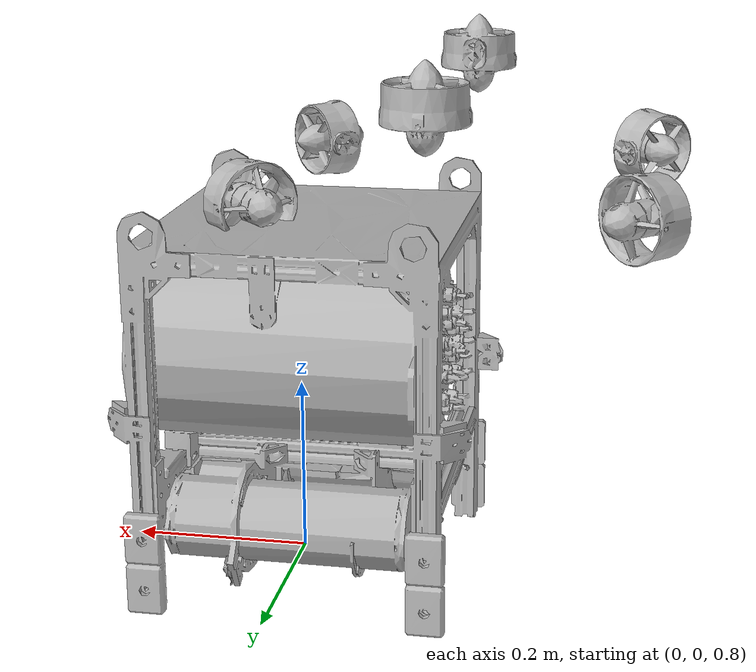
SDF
<?xml version="1.0"?>
<sdf version="1.7">
  <world name="default">
    <gravity>0 0 -9.81</gravity>
    <fluid_density>1000.00</fluid_density>
    <!-- A global light source -->
    <include>
      <uri>model://sun</uri>
    </include>
    <!-- A ground plane -->
    <include>
      <uri>model://ground_plane</uri>
    </include>

    <include>
      <uri>model://triton_auv</uri>
      <pose>0 0 1 0 0 0</pose>
    </include>
    <grid>0</grid>
  </world>
</sdf>

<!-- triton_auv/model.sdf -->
<sdf version='1.7'>
  <model name='triton_auv'>

    <!-- Frame -->
    <include>
      <uri>model://triton_frame</uri>
      <pose>0 0 0 0 0 0</pose>
      <name>frame</name>
    </include>

    <!-- Thrusters -->
    <include>
      <uri>model://triton_thruster</uri>
      <pose>-0.3776091 -0.357124 0.2136902 0 1.5707 2.35619</pose>
      <name>thruster1</name>
    </include>

    <include>
      <uri>model://triton_thruster</uri>
      <pose>-0.3776091 0.026924 0.2136902 0 -1.5707 0.785398</pose>
      <name>thruster2</name>
    </include>

    <include>
      <uri>model://triton_thruster</uri>
      <pose>0.0474091 -0.357124 0.2136902 0 -1.5707 -2.35619</pose>
      <name>thruster4</name>
    </include>

    <include>
      <uri>model://triton_thruster</uri>
      <pose>0.0474091 0.026924 0.2136902 0 1.5707 -0.785398</pose>
      <name>thruster3</name>
    </include>

    <include>
      <uri>model://triton_thruster</uri>
      <pose>-0.14965425999999998 -0.38172644 0.33146492 3.1415 3.1415 0</pose>
      <name>thruster5</name>
    </include>

    <include>
      <uri>model://triton_thruster</uri>
      <pose>-0.14965425999999998 0.05152644 0.33146492 3.1415 3.1415 3.1415</pose>
      <name>thruster6</name>
    </include>

    <!--

      Hydrodynamic model used to calculate restoring forces.

      In the future this description should be specified in each link
      for a better approximation.

    -->

    <base_link>frame::frame</base_link>
    <neutrally_buoyant>1</neutrally_buoyant>
    <volume>0.0209673336007</volume>
    <center_of_buoyancy>-0.14826	-0.1687	0.2339</center_of_buoyancy>
    <hydrodynamic_model>
        <!-- Useful params for controls simplifications-->
        <scalingBuoyancy>0.93</scalingBuoyancy>
        <scalingDamping>1.0</scalingDamping>
        <scalingAddedMass>0.01</scalingAddedMass>

        <!-- Added mass: see p.28 in Berg2012 -->
        <added_mass>
          5.579266667 0           0           0         0           0
          0           15.09083333 0           0         0           0
          0           0           30.55093333 0         0           0
          0           0           0           7.2955698 0           0
          0           0           0           0         15.51297973 0
          0           0           0           0         0           16.14743877
        </added_mass>
        <!-- Linear damping: see p.31 in Berg2012 -->
        <linear_damping>
            -0.2229119791 -1.105547605 -0.2472084207 -0.02229119791 -0.1105547605 -0.02472084207
        </linear_damping>
        <!-- Non-linear damping: see p.30 in Berg2012 -->
        <quadratic_damping>
            -59.75066625 -71.13459739 -67.099009 -5.975066625 -7.113459739 -6.7099009
        </quadratic_damping>
    </hydrodynamic_model>

    <!--

      Fixed Joints within AUV

    -->

    <joint name='frame_thruster1' type='fixed'>
      <parent>frame::frame</parent>
      <child>thruster1::thruster</child>
      <pose>0 0 0 0 0 0</pose>
      <physics>
        <ode>
          <limit>
            <cfm>0</cfm>
            <erp>0.2</erp>
          </limit>
          <suspension>
            <cfm>0</cfm>
            <erp>0.2</erp>
          </suspension>
        </ode>
      </physics>
    </joint>

    <joint name='frame_thruster2' type='fixed'>
      <parent>frame::frame</parent>
      <child>thruster2::thruster</child>
      <pose>0 0 0 0 0 0</pose>
      <physics>
        <ode>
          <limit>
            <cfm>0</cfm>
            <erp>0.2</erp>
          </limit>
          <suspension>
            <cfm>0</cfm>
            <erp>0.2</erp>
          </suspension>
        </ode>
      </physics>
    </joint>

    <joint name='frame_thruster3' type='fixed'>
      <parent>frame::frame</parent>
      <child>thruster3::thruster</child>
      <pose>0 0 0 0 0 0</pose>
      <physics>
        <ode>
          <limit>
            <cfm>0</cfm>
            <erp>0.2</erp>
          </limit>
          <suspension>
            <cfm>0</cfm>
            <erp>0.2</erp>
          </suspension>
        </ode>
      </physics>
    </joint>

    <joint name='frame_thruster4' type='fixed'>
      <parent>frame::frame</parent>
      <child>thruster4::thruster</child>
      <pose>0 0 0 0 0 0</pose>
      <physics>
        <ode>
          <limit>
            <cfm>0</cfm>
            <erp>0.2</erp>
          </limit>
          <suspension>
            <cfm>0</cfm>
            <erp>0.2</erp>
          </suspension>
        </ode>
      </physics>
    </joint>

    <joint name='frame_thruster5' type='fixed'>
      <parent>frame::frame</parent>
      <child>thruster5::thruster</child>
      <pose>0 0 0 0 0 0</pose>
      <physics>
        <ode>
          <limit>
            <cfm>0</cfm>
            <erp>0.2</erp>
          </limit>
          <suspension>
            <cfm>0</cfm>
            <erp>0.2</erp>
          </suspension>
        </ode>
      </physics>
    </joint>

    <joint name='frame_thruster6' type='fixed'>
      <parent>frame::frame</parent>
      <child>thruster6::thruster</child>
      <pose>0 0 0 0 0 0</pose>
      <physics>
        <ode>
          <limit>
            <cfm>0</cfm>
            <erp>0.2</erp>
          </limit>
          <suspension>
            <cfm>0</cfm>
            <erp>0.2</erp>
          </suspension>
        </ode>
      </physics>
    </joint>

    <!--

      Plugins

    -->

    <!-- Thrust Vectors -->
    <plugin name="thruster_array" filename="libthruster_driver_plugin.so">
      <thruster_count>6</thruster_count>
      <ros>
        <namespace>/triton/controls</namespace>
        <remapping>output_forces</remapping>
      </ros>
    </plugin>

    <plugin name="hydrodynamics" filename="libhydrodynamics_plugin.so"></plugin>

    <plugin name="ground_truth_sensor" filename="libground_truth_sensor.so">
      <state_topic>/triton/state</state_topic>
      <update_rate>50</update_rate>
    </plugin>
    <plugin name="p3d_base_controller" filename="libgazebo_ros_p3d.so">
      <always_on>true</always_on>
      <update_rate>50.0</update_rate>
      <body_name>frame::frame</body_name>
      <topic_name>/triton/state</topic_name>
      <gaussian_noise>0.01</gaussian_noise>
      <frame_name>map</frame_name>
      <xyz_offset>0 0 0</xyz_offset>
      <rpy_offset>0 0 0</rpy_offset>
    </plugin>

    <static>0</static>
    <allow_auto_disable>1</allow_auto_disable>

  </model>
</sdf>

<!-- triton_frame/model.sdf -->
<sdf version='1.7'>
  <model name='triton_frame'>
    <link name='frame'>

      <!-- pose relaive to STL file origin, was moved to AUV center using Blender -->
      <inertial>
        <mass>17.43388</mass>
        <inertia>
          <ixx> 0.42659179587</ixx>
          <ixy> 0.00091257391</ixy>
          <ixz>-0.00613671114</ixz>
          <iyy> 0.47862692534</iyy>
          <iyz>-0.00224649356</iyz>
          <izz> 0.42575057622</izz>
        </inertia>
        <pose>-0.14826 -0.1687 0.19368 0 -0 0</pose>
      </inertial>

      <!-- Visual Data -->
      <visual name='visual'>
        <pose>0 0 0 0 0 0</pose>
        <geometry>
          <mesh>
            <uri>model://triton_frame/meshes/triton_frame.dae</uri>
            <scale>1 1 1</scale>
          </mesh>
        </geometry>
        <material>
          <lighting>1</lighting>
          <shader type='pixel'/>
        </material>
        <transparency>0</transparency>
        <cast_shadows>1</cast_shadows>
      </visual>

      <gravity>1</gravity>

      <!-- Collision Data-->
      <collision name='collision'>
        <laser_retro>0</laser_retro>
        <max_contacts>10</max_contacts>
        <pose>0 0 0 0 0 0</pose>
        <geometry>
          <mesh>
            <uri>model://triton_frame/meshes/triton_frame.dae</uri>
            <scale>1 1 1</scale>
          </mesh>
        </geometry>
        <!-- Surface Data consists of default value, we should reseach better numbers-->
        <surface>
          <friction>
            <ode>
              <mu>1</mu>
              <mu2>1</mu2>
              <fdir1>0 0 0</fdir1>
              <slip1>0</slip1>
              <slip2>0</slip2>
            </ode>
            <torsional>
              <coefficient>1</coefficient>
              <patch_radius>0</patch_radius>
              <surface_radius>0</surface_radius>
              <use_patch_radius>1</use_patch_radius>
              <ode>
                <slip>0</slip>
              </ode>
            </torsional>
          </friction>
          <bounce>
            <restitution_coefficient>0</restitution_coefficient>
            <threshold>1e+06</threshold>
          </bounce>
          <contact>
            <collide_without_contact>0</collide_without_contact>
            <collide_without_contact_bitmask>1</collide_without_contact_bitmask>
            <collide_bitmask>1</collide_bitmask>
            <ode>
              <soft_cfm>0</soft_cfm>
              <soft_erp>0.2</soft_erp>
              <kp>1e+13</kp>
              <kd>1</kd>
              <max_vel>0.01</max_vel>
              <min_depth>0</min_depth>
            </ode>
            <bullet>
              <split_impulse>1</split_impulse>
              <split_impulse_penetration_threshold>-0.01</split_impulse_penetration_threshold>
              <soft_cfm>0</soft_cfm>
              <soft_erp>0.2</soft_erp>
              <kp>1e+13</kp>
              <kd>1</kd>
            </bullet>
          </contact>
        </surface>
      </collision>

      <sensor type="camera" name="front_camera">
        <pose>0.05 -0.17 0 0 0 0</pose>
        <update_rate>60</update_rate>
        <visualize>true</visualize>
        <camera name="front">
          <horizontal_fov>1.3962634</horizontal_fov>
          <image>
            <width>640</width>
            <height>480</height>
            <format>R8G8B8</format>
          </image>
          <clip>
            <near>0.02</near>
            <far>300</far>
          </clip>
          <noise>
            <type>gaussian</type>
            <mean>0.0</mean>
            <stddev>0.007</stddev>
          </noise>
        </camera>
        <plugin name="front_camera" filename="libgazebo_ros_camera.so">
          <ros>
            <namespace>/triton/drivers</namespace>
          </ros>
        </plugin>
      </sensor>
      <sensor type="camera" name="down_camera">
        <pose>0.05 -0.17 0 0 1.57 0</pose>
        <update_rate>60</update_rate>
        <visualize>true</visualize>
        <camera name="down">
          <horizontal_fov>1.3962634</horizontal_fov>
          <image>
            <width>640</width>
            <height>480</height>
            <format>R8G8B8</format>
          </image>
          <clip>
            <near>0.02</near>
            <far>300</far>
          </clip>
          <noise>
            <type>gaussian</type>
            <mean>0.0</mean>
            <stddev>0.007</stddev>
          </noise>
        </camera>
        <plugin name="down_camera" filename="libgazebo_ros_camera.so">
          <ros>
            <namespace>/triton/drivers</namespace>
          </ros>
        </plugin>
      </sensor>
      <sensor name="imu_sensor" type="imu">
        <always_on>true</always_on>
        <update_rate>100</update_rate>
        <visualize>true</visualize>
        <topic>imu</topic>
        <plugin filename="libgazebo_ros_imu_sensor.so" name="imu">
          <topicName>imu</topicName>
          <bodyName>imu_link</bodyName>
          <updateRateHZ>100.0</updateRateHZ>
          <gaussianNoise>0</gaussianNoise>
          <xyzOffset>0 0 0</xyzOffset>
          <rpyOffset>0 0 0</rpyOffset>
          <frameName>imu_link</frameName>
          <initialOrientationAsReference>false</initialOrientationAsReference>
          <ros>
            <namespace>/triton/drivers</namespace>
          </ros>
        </plugin>
        <pose>0 0 0 0 0 0</pose>
      </sensor>
    </link>

    <static>0</static>
    <allow_auto_disable>1</allow_auto_disable>
  </model>
</sdf>

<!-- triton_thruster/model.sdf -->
<sdf version='1.7'>
  <model name='triton_thruster'>
    <link name='thruster'>
      <pose>-0 0 0 0 -0 0</pose>
      <inertial>
        <mass>0.000001</mass>
        <inertia>
          <ixx>0.00030988</ixx>
          <ixy>5.5564e-08</ixy>
          <ixz>3.9324e-07</ixz>
          <iyy>0.0003498</iyy>
          <iyz>1.7659e-06</iyz>
          <izz>0.00030001</izz>
        </inertia>
      </inertial>

      <gravity>1</gravity>

      <!-- Visual Data -->
      <visual name='visual'>
        <pose>0 0 0 0 -0 0</pose>
        <geometry>
          <mesh>
            <uri>model://triton_thruster/meshes/triton_thruster.dae</uri>
            <scale>1 1 1</scale>
          </mesh>
        </geometry>
        <material>
          <lighting>1</lighting>
          <shader type='pixel'/>
        </material>
        <transparency>0</transparency>
        <cast_shadows>1</cast_shadows>
      </visual>

      <!-- Collision Data-->
      <collision name='collision'>
        <laser_retro>0</laser_retro>
        <max_contacts>10</max_contacts>
        <pose>0 0 0 0 -0 0</pose>
        <geometry>
          <mesh>
            <uri>model://triton_thruster/meshes/triton_thruster.dae</uri>
            <scale>1 1 1</scale>
          </mesh>
        </geometry>
        <!-- Surface Data consists of default value, we should reseach better numbers-->
        <surface>
          <friction>
            <ode>
              <mu>1</mu>
              <mu2>1</mu2>
              <fdir1>0 0 0</fdir1>
              <slip1>0</slip1>
              <slip2>0</slip2>
            </ode>
            <torsional>
              <coefficient>1</coefficient>
              <patch_radius>0</patch_radius>
              <surface_radius>0</surface_radius>
              <use_patch_radius>1</use_patch_radius>
              <ode>
                <slip>0</slip>
              </ode>
            </torsional>
          </friction>
          <bounce>
            <restitution_coefficient>0</restitution_coefficient>
            <threshold>1e+06</threshold>
          </bounce>
          <contact>
            <collide_without_contact>0</collide_without_contact>
            <collide_without_contact_bitmask>1</collide_without_contact_bitmask>
            <collide_bitmask>1</collide_bitmask>
            <ode>
              <soft_cfm>0</soft_cfm>
              <soft_erp>0.2</soft_erp>
              <kp>1e+13</kp>
              <kd>1</kd>
              <max_vel>0.01</max_vel>
              <min_depth>0</min_depth>
            </ode>
            <bullet>
              <split_impulse>1</split_impulse>
              <split_impulse_penetration_threshold>-0.01</split_impulse_penetration_threshold>
              <soft_cfm>0</soft_cfm>
              <soft_erp>0.2</soft_erp>
              <kp>1e+13</kp>
              <kd>1</kd>
            </bullet>
          </contact>
        </surface>
      </collision>

    </link>
    <static>0</static>
    <allow_auto_disable>1</allow_auto_disable>
  </model>
</sdf>
